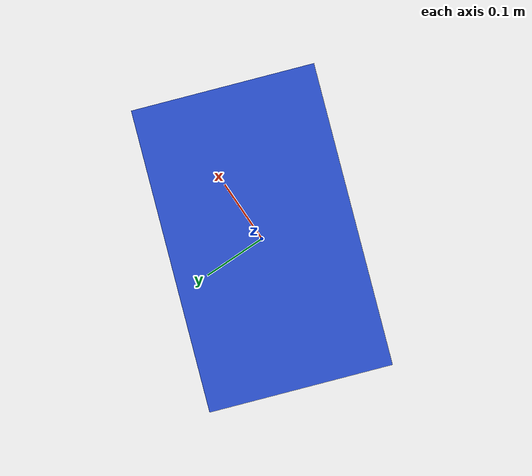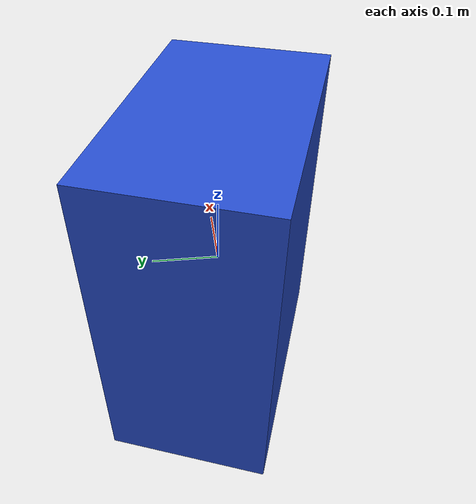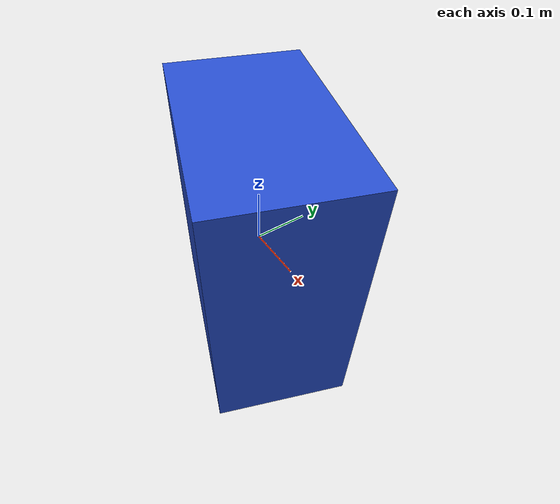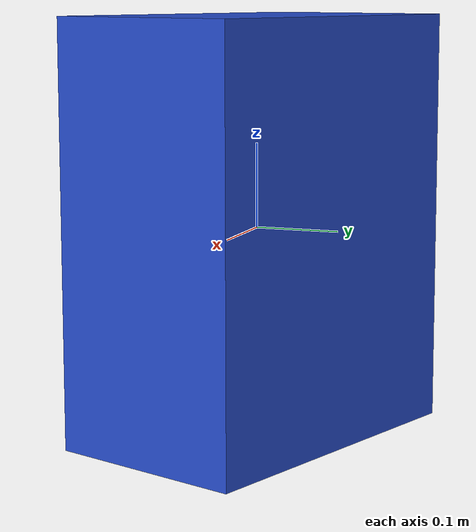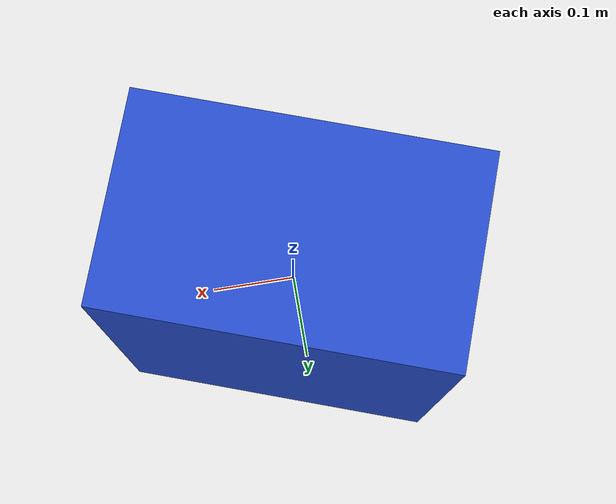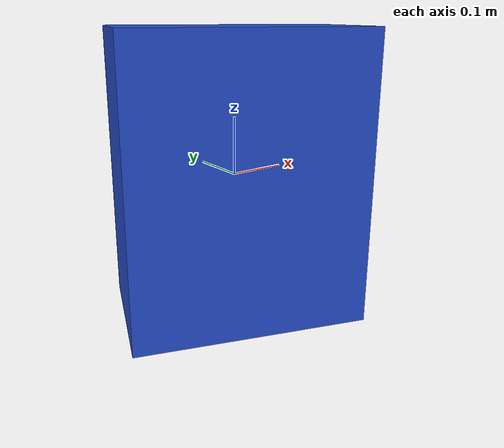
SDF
<sdf version="1.6"><model name="model_6"><link name="link"><pose>0 0 0 0 0 2.796880476318818</pose><gravity>true</gravity><static>true</static><inertial><mass>1.0</mass><inertia><ixx>0.16666</ixx><ixy>0</ixy><ixz>0</ixz><iyy>0.16666</iyy><iyz>0</iyz><izz>0.16666</izz></inertia></inertial><collision name="collision"><geometry><box><size>0.40300196573660496 0.24440562320361825 0.5</size></box></geometry></collision><visual name="visual"><geometry><box><size>0.40300196573660496 0.24440562320361825 0.5</size></box></geometry><material><script><name>Gazebo/Blue</name><uri>file://media/materials/scripts/gazebo.material</uri></script></material></visual></link></model></sdf>
